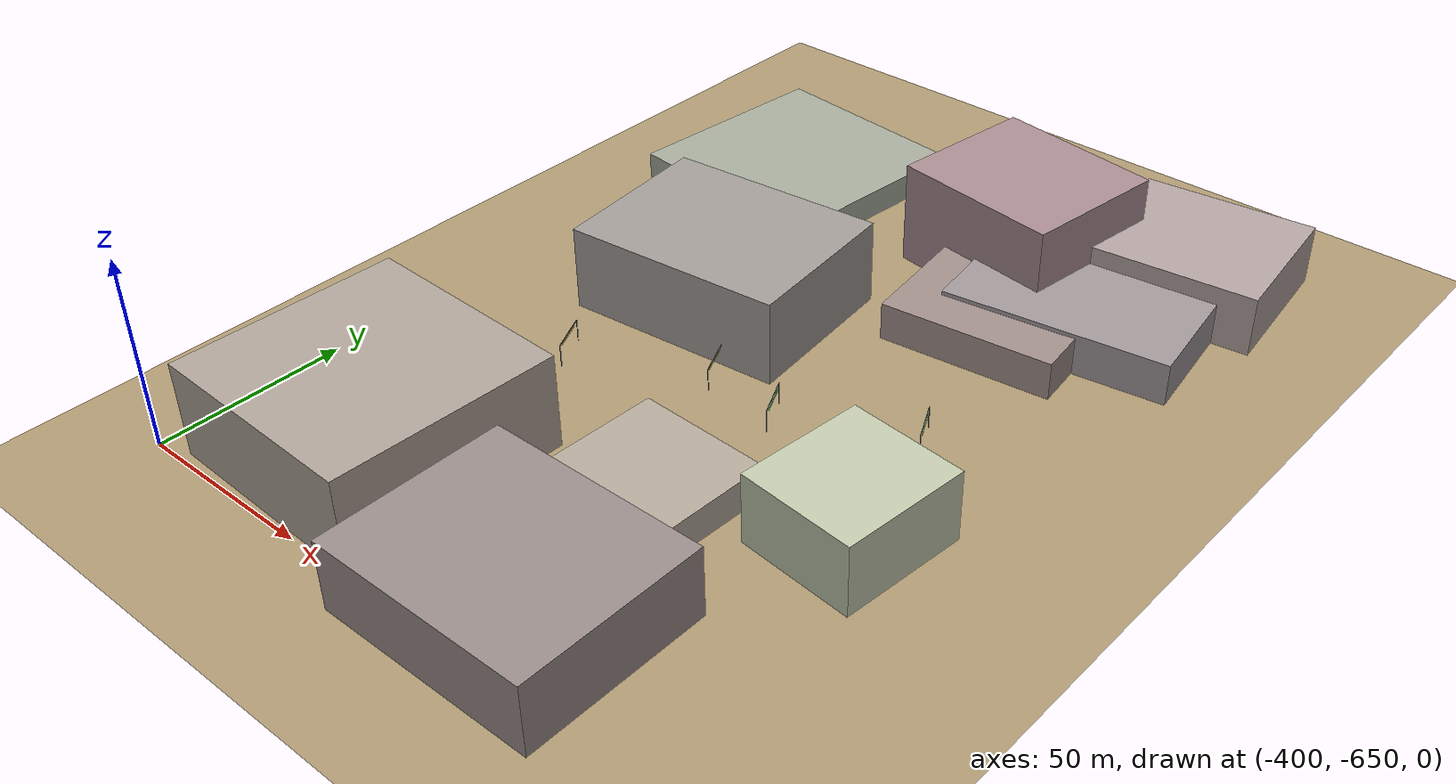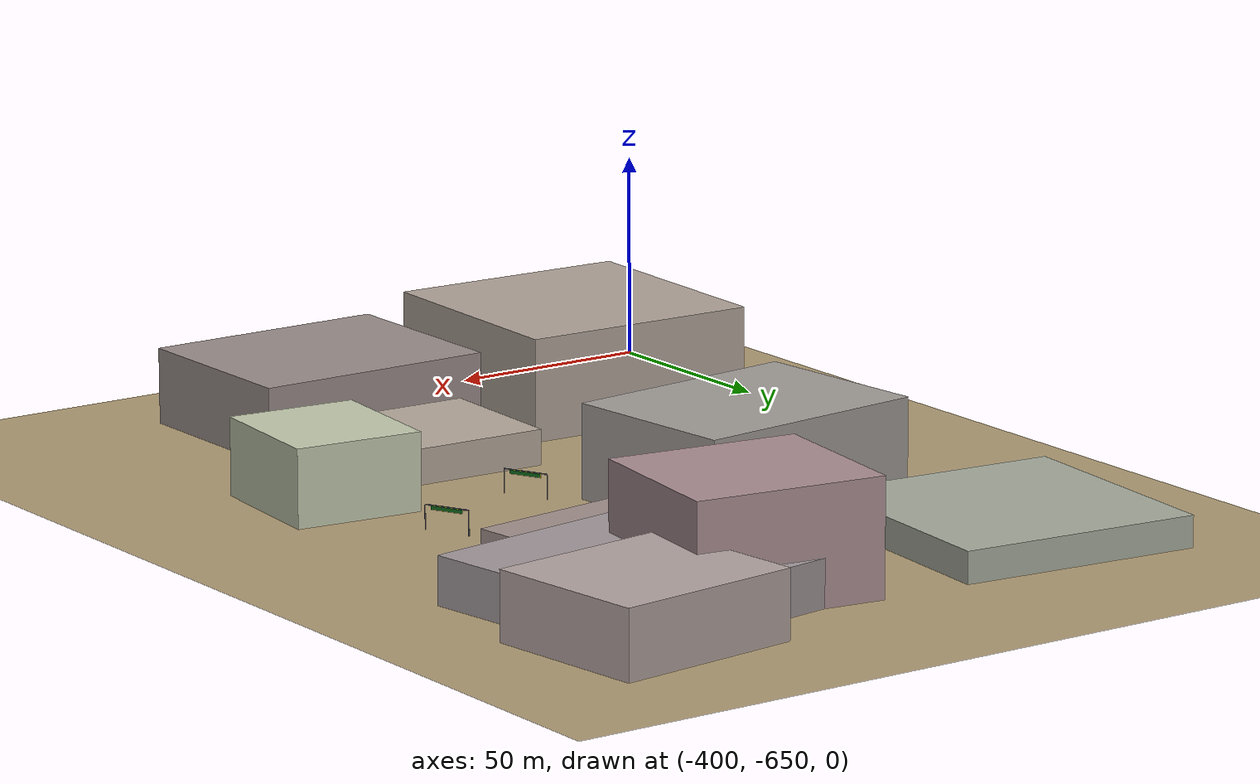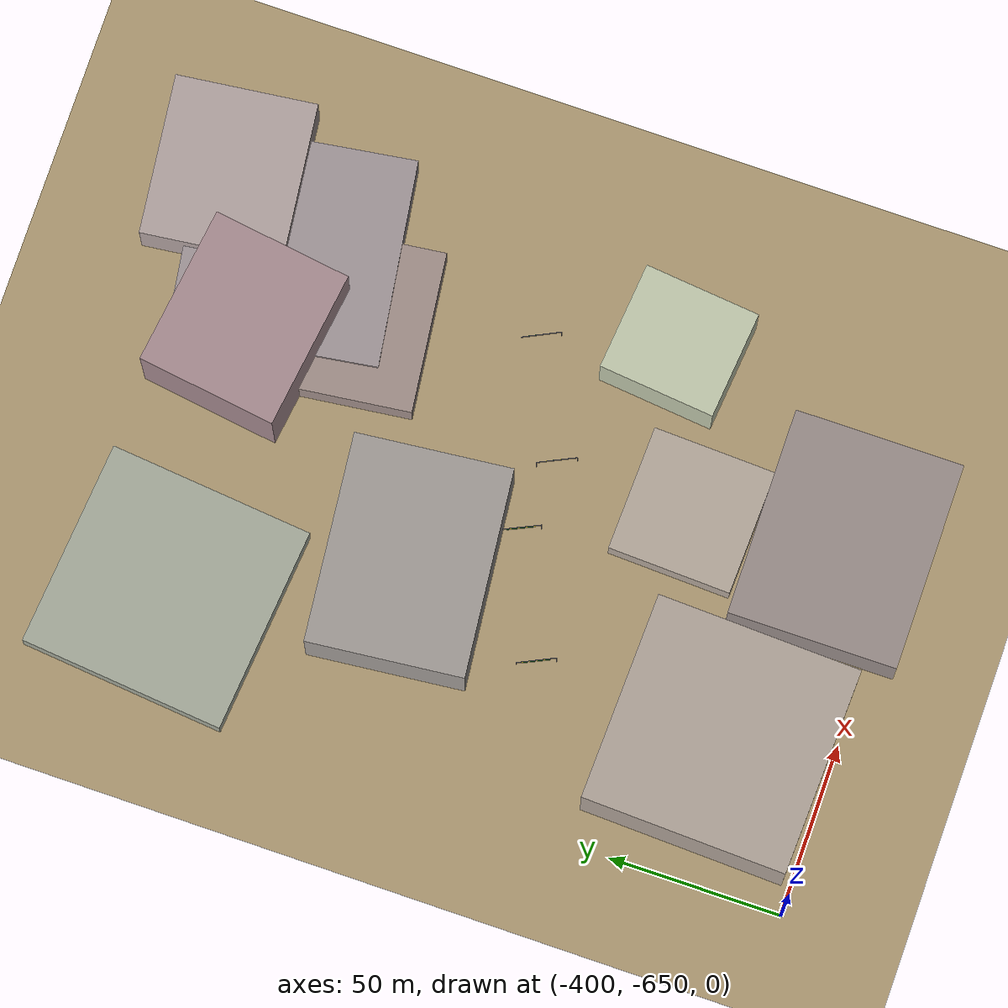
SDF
<sdf version="1.9">
 <world name="crossroad_world">
  <model name="ground_plane">
   <static>true</static>
   <pose>0 0 -0.05 0 0 0</pose>
   <link name="link">
    <collision name="collision">
     <geometry><plane><normal>0 0 1</normal><size>10000 10000</size></plane></geometry>
    </collision>
    <visual name="visual">
     <geometry><plane><normal>0 0 1</normal><size>15000 15000</size></plane></geometry>
     <material><ambient>0.68 0.60 0.45 1</ambient><diffuse>0.68 0.60 0.45 1</diffuse></material>
    </visual>
   </link>
  </model>
  <model name="gantry_53">
   <static>true</static>
   <pose>-321.107 -547.490 0 0 0 -1.134</pose>
   <link name="link">
    <visual name="post_l">
     <pose>-5.700 0 2.925 0 0 0</pose>
     <geometry><cylinder><radius>0.1</radius><length>5.85</length></cylinder></geometry>
     <material><ambient>0.30 0.30 0.35 1</ambient><diffuse>0.30 0.30 0.35 1</diffuse></material>
    </visual>
    <visual name="post_r">
     <pose>5.700 0 2.925 0 0 0</pose>
     <geometry><cylinder><radius>0.1</radius><length>5.85</length></cylinder></geometry>
     <material><ambient>0.30 0.30 0.35 1</ambient><diffuse>0.30 0.30 0.35 1</diffuse></material>
    </visual>
    <visual name="beam">
     <pose>0 0 6.000 0 0 0</pose>
     <geometry><box><size>11.400 0.22 0.22</size></box></geometry>
     <material><ambient>0.30 0.30 0.35 1</ambient><diffuse>0.30 0.30 0.35 1</diffuse></material>
    </visual>
    <visual name="sign_border">
     <pose>0 -0.14 5.450 0 0 0</pose>
     <geometry><box><size>8.288 0.04 0.92</size></box></geometry>
     <material><ambient>0.90 0.85 0.10 1</ambient><diffuse>0.90 0.85 0.10 1</diffuse></material>
    </visual>
    <visual name="sign_panel">
     <pose>0 -0.15 5.450 0 0 0</pose>
     <geometry><box><size>8.208 0.05 0.86</size></box></geometry>
     <material><ambient>0.05 0.38 0.10 1</ambient><diffuse>0.05 0.38 0.10 1</diffuse></material>
    </visual>
    <collision name="col_post_l">
     <pose>-5.700 0 2.925 0 0 0</pose>
     <geometry><cylinder><radius>0.1</radius><length>5.85</length></cylinder></geometry>
    </collision>
    <collision name="col_post_r">
     <pose>5.700 0 2.925 0 0 0</pose>
     <geometry><cylinder><radius>0.1</radius><length>5.85</length></cylinder></geometry>
    </collision>
    <collision name="col_beam">
     <pose>0 0 6.000 0 0 0</pose>
     <geometry><box><size>11.400 0.22 0.22</size></box></geometry>
    </collision>
   </link>
  </model>
  <model name="gantry_54">
   <static>true</static>
   <pose>-355.144 -563.536 0 0 0 -1.126</pose>
   <link name="link">
    <visual name="post_l">
     <pose>-5.700 0 2.925 0 0 0</pose>
     <geometry><cylinder><radius>0.1</radius><length>5.85</length></cylinder></geometry>
     <material><ambient>0.30 0.30 0.35 1</ambient><diffuse>0.30 0.30 0.35 1</diffuse></material>
    </visual>
    <visual name="post_r">
     <pose>5.700 0 2.925 0 0 0</pose>
     <geometry><cylinder><radius>0.1</radius><length>5.85</length></cylinder></geometry>
     <material><ambient>0.30 0.30 0.35 1</ambient><diffuse>0.30 0.30 0.35 1</diffuse></material>
    </visual>
    <visual name="beam">
     <pose>0 0 6.000 0 0 0</pose>
     <geometry><box><size>11.400 0.22 0.22</size></box></geometry>
     <material><ambient>0.30 0.30 0.35 1</ambient><diffuse>0.30 0.30 0.35 1</diffuse></material>
    </visual>
    <visual name="sign_border">
     <pose>0 -0.14 5.450 0 0 0</pose>
     <geometry><box><size>8.288 0.04 0.92</size></box></geometry>
     <material><ambient>0.90 0.85 0.10 1</ambient><diffuse>0.90 0.85 0.10 1</diffuse></material>
    </visual>
    <visual name="sign_panel">
     <pose>0 -0.15 5.450 0 0 0</pose>
     <geometry><box><size>8.208 0.05 0.86</size></box></geometry>
     <material><ambient>0.05 0.38 0.10 1</ambient><diffuse>0.05 0.38 0.10 1</diffuse></material>
    </visual>
    <collision name="col_post_l">
     <pose>-5.700 0 2.925 0 0 0</pose>
     <geometry><cylinder><radius>0.1</radius><length>5.85</length></cylinder></geometry>
    </collision>
    <collision name="col_post_r">
     <pose>5.700 0 2.925 0 0 0</pose>
     <geometry><cylinder><radius>0.1</radius><length>5.85</length></cylinder></geometry>
    </collision>
    <collision name="col_beam">
     <pose>0 0 6.000 0 0 0</pose>
     <geometry><box><size>11.400 0.22 0.22</size></box></geometry>
    </collision>
   </link>
  </model>
  <model name="gantry_59">
   <static>true</static>
   <pose>-299.916 -550.762 0 0 0 2.019</pose>
   <link name="link">
    <visual name="post_l">
     <pose>-5.700 0 2.925 0 0 0</pose>
     <geometry><cylinder><radius>0.1</radius><length>5.85</length></cylinder></geometry>
     <material><ambient>0.30 0.30 0.35 1</ambient><diffuse>0.30 0.30 0.35 1</diffuse></material>
    </visual>
    <visual name="post_r">
     <pose>5.700 0 2.925 0 0 0</pose>
     <geometry><cylinder><radius>0.1</radius><length>5.85</length></cylinder></geometry>
     <material><ambient>0.30 0.30 0.35 1</ambient><diffuse>0.30 0.30 0.35 1</diffuse></material>
    </visual>
    <visual name="beam">
     <pose>0 0 6.000 0 0 0</pose>
     <geometry><box><size>11.400 0.22 0.22</size></box></geometry>
     <material><ambient>0.30 0.30 0.35 1</ambient><diffuse>0.30 0.30 0.35 1</diffuse></material>
    </visual>
    <visual name="sign_border">
     <pose>0 -0.14 5.450 0 0 0</pose>
     <geometry><box><size>8.288 0.04 0.92</size></box></geometry>
     <material><ambient>0.90 0.85 0.10 1</ambient><diffuse>0.90 0.85 0.10 1</diffuse></material>
    </visual>
    <visual name="sign_panel">
     <pose>0 -0.15 5.450 0 0 0</pose>
     <geometry><box><size>8.208 0.05 0.86</size></box></geometry>
     <material><ambient>0.05 0.38 0.10 1</ambient><diffuse>0.05 0.38 0.10 1</diffuse></material>
    </visual>
    <collision name="col_post_l">
     <pose>-5.700 0 2.925 0 0 0</pose>
     <geometry><cylinder><radius>0.1</radius><length>5.85</length></cylinder></geometry>
    </collision>
    <collision name="col_post_r">
     <pose>5.700 0 2.925 0 0 0</pose>
     <geometry><cylinder><radius>0.1</radius><length>5.85</length></cylinder></geometry>
    </collision>
    <collision name="col_beam">
     <pose>0 0 6.000 0 0 0</pose>
     <geometry><box><size>11.400 0.22 0.22</size></box></geometry>
    </collision>
   </link>
  </model>
  <model name="gantry_60">
   <static>true</static>
   <pose>-267.600 -535.066 0 0 0 2.027</pose>
   <link name="link">
    <visual name="post_l">
     <pose>-5.700 0 2.925 0 0 0</pose>
     <geometry><cylinder><radius>0.1</radius><length>5.85</length></cylinder></geometry>
     <material><ambient>0.30 0.30 0.35 1</ambient><diffuse>0.30 0.30 0.35 1</diffuse></material>
    </visual>
    <visual name="post_r">
     <pose>5.700 0 2.925 0 0 0</pose>
     <geometry><cylinder><radius>0.1</radius><length>5.85</length></cylinder></geometry>
     <material><ambient>0.30 0.30 0.35 1</ambient><diffuse>0.30 0.30 0.35 1</diffuse></material>
    </visual>
    <visual name="beam">
     <pose>0 0 6.000 0 0 0</pose>
     <geometry><box><size>11.400 0.22 0.22</size></box></geometry>
     <material><ambient>0.30 0.30 0.35 1</ambient><diffuse>0.30 0.30 0.35 1</diffuse></material>
    </visual>
    <visual name="sign_border">
     <pose>0 -0.14 5.450 0 0 0</pose>
     <geometry><box><size>8.288 0.04 0.92</size></box></geometry>
     <material><ambient>0.90 0.85 0.10 1</ambient><diffuse>0.90 0.85 0.10 1</diffuse></material>
    </visual>
    <visual name="sign_panel">
     <pose>0 -0.15 5.450 0 0 0</pose>
     <geometry><box><size>8.208 0.05 0.86</size></box></geometry>
     <material><ambient>0.05 0.38 0.10 1</ambient><diffuse>0.05 0.38 0.10 1</diffuse></material>
    </visual>
    <collision name="col_post_l">
     <pose>-5.700 0 2.925 0 0 0</pose>
     <geometry><cylinder><radius>0.1</radius><length>5.85</length></cylinder></geometry>
    </collision>
    <collision name="col_post_r">
     <pose>5.700 0 2.925 0 0 0</pose>
     <geometry><cylinder><radius>0.1</radius><length>5.85</length></cylinder></geometry>
    </collision>
    <collision name="col_beam">
     <pose>0 0 6.000 0 0 0</pose>
     <geometry><box><size>11.400 0.22 0.22</size></box></geometry>
    </collision>
   </link>
  </model>
  <model name="building_251">
   <static>true</static>
   <pose>-301.630 -590.805 4.331 0 0 -0.036</pose>
   <link name="link">
    <visual name="body">
     <geometry><box><size>36.33 35.85 8.66</size></box></geometry>
     <material><ambient>0.71 0.66 0.61 1</ambient><diffuse>0.71 0.66 0.61 1</diffuse></material>
    </visual>
    <collision name="col"><geometry><box><size>36.33 35.85 8.66</size></box></geometry></collision>
   </link>
  </model>
  <model name="building_258">
   <static>true</static>
   <pose>-341.247 -521.699 11.418 0 0 0.101</pose>
   <link name="link">
    <visual name="body">
     <geometry><box><size>60.00 45.37 22.84</size></box></geometry>
     <material><ambient>0.63 0.61 0.59 1</ambient><diffuse>0.63 0.61 0.59 1</diffuse></material>
    </visual>
    <collision name="col"><geometry><box><size>60.00 45.37 22.84</size></box></geometry></collision>
   </link>
  </model>
  <model name="building_351">
   <static>true</static>
   <pose>-369.017 -459.902 3.807 0 0 -0.094</pose>
   <link name="link">
    <visual name="body">
     <geometry><box><size>60.00 60.00 7.61</size></box></geometry>
     <material><ambient>0.65 0.67 0.61 1</ambient><diffuse>0.65 0.67 0.61 1</diffuse></material>
    </visual>
    <collision name="col"><geometry><box><size>60.00 60.00 7.61</size></box></geometry></collision>
   </link>
  </model>
  <model name="building_366">
   <static>true</static>
   <pose>-293.997 -457.264 13.996 0 0 -0.137</pose>
   <link name="link">
    <visual name="body">
     <geometry><box><size>46.40 40.88 27.99</size></box></geometry>
     <material><ambient>0.66 0.55 0.57 1</ambient><diffuse>0.66 0.55 0.57 1</diffuse></material>
    </visual>
    <collision name="col"><geometry><box><size>46.40 40.88 27.99</size></box></geometry></collision>
   </link>
  </model>
  <model name="building_367">
   <static>true</static>
   <pose>-253.017 -437.866 8.123 0 0 0.117</pose>
   <link name="link">
    <visual name="body">
     <geometry><box><size>46.40 40.88 16.25</size></box></geometry>
     <material><ambient>0.70 0.64 0.63 1</ambient><diffuse>0.70 0.64 0.63 1</diffuse></material>
    </visual>
    <collision name="col"><geometry><box><size>46.40 40.88 16.25</size></box></geometry></collision>
   </link>
  </model>
  <model name="building_368">
   <static>true</static>
   <pose>-280.451 -485.322 5.110 0 0 0.120</pose>
   <link name="link">
    <visual name="body">
     <geometry><box><size>46.40 40.88 10.22</size></box></geometry>
     <material><ambient>0.63 0.56 0.54 1</ambient><diffuse>0.63 0.56 0.54 1</diffuse></material>
    </visual>
    <collision name="col"><geometry><box><size>46.40 40.88 10.22</size></box></geometry></collision>
   </link>
  </model>
  <model name="building_426">
   <static>true</static>
   <pose>-266.770 -461.446 5.685 0 0 0.145</pose>
   <link name="link">
    <visual name="body">
     <geometry><box><size>60.00 60.00 11.37</size></box></geometry>
     <material><ambient>0.63 0.59 0.60 1</ambient><diffuse>0.63 0.59 0.60 1</diffuse></material>
    </visual>
    <collision name="col"><geometry><box><size>60.00 60.00 11.37</size></box></geometry></collision>
   </link>
  </model>
  <model name="building_462">
   <static>true</static>
   <pose>-297.300 -633.828 9.284 0 0 0.003</pose>
   <link name="link">
    <visual name="body">
     <geometry><box><size>60.00 48.92 18.57</size></box></geometry>
     <material><ambient>0.60 0.55 0.54 1</ambient><diffuse>0.60 0.55 0.54 1</diffuse></material>
    </visual>
    <collision name="col"><geometry><box><size>60.00 48.92 18.57</size></box></geometry></collision>
   </link>
  </model>
  <model name="building_463">
   <static>true</static>
   <pose>-360.838 -618.714 12.606 0 0 -0.034</pose>
   <link name="link">
    <visual name="body">
     <geometry><box><size>60.00 59.38 25.21</size></box></geometry>
     <material><ambient>0.69 0.64 0.60 1</ambient><diffuse>0.69 0.64 0.60 1</diffuse></material>
    </visual>
    <collision name="col"><geometry><box><size>60.00 59.38 25.21</size></box></geometry></collision>
   </link>
  </model>
  <model name="building_501">
   <static>true</static>
   <pose>-259.269 -572.581 9.407 0 0 -0.098</pose>
   <link name="link">
    <visual name="body">
     <geometry><box><size>31.54 34.10 18.81</size></box></geometry>
     <material><ambient>0.76 0.79 0.68 1</ambient><diffuse>0.76 0.79 0.68 1</diffuse></material>
    </visual>
    <collision name="col"><geometry><box><size>31.54 34.10 18.81</size></box></geometry></collision>
   </link>
  </model>
 </world>
</sdf>
